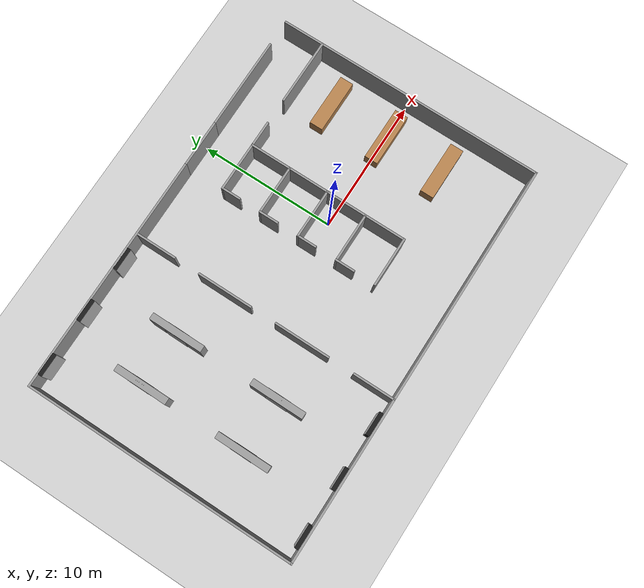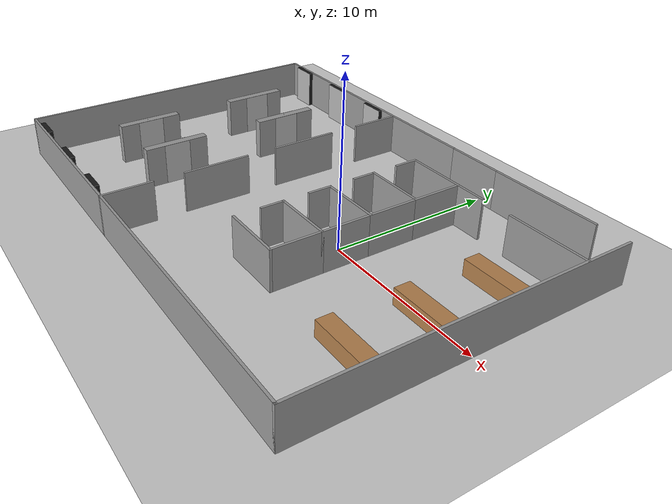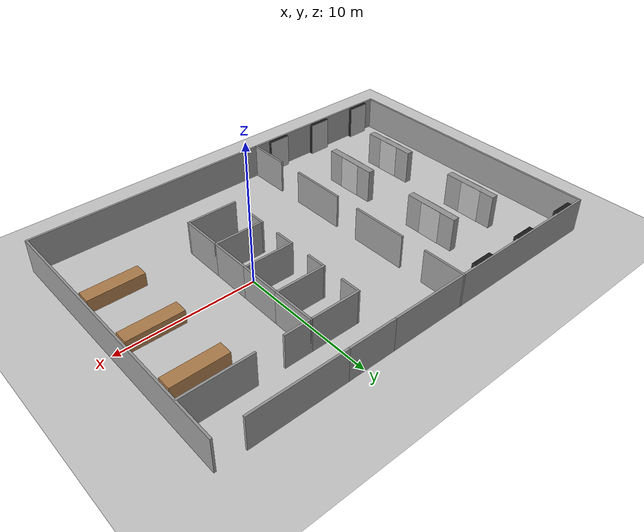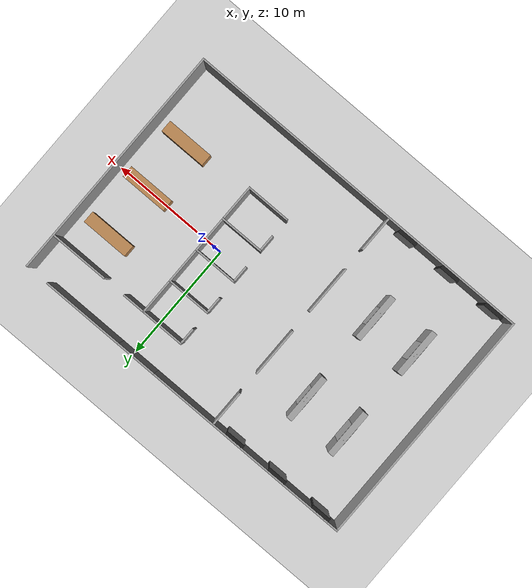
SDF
<sdf version="1.7">
 <world name="default">
  <light name="sun" type="directional">
   <pose>0 0 10 0 -0 0</pose>
   <diffuse>0.8 0.8 0.8 1</diffuse>
   <specular>0.2 0.2 0.2 1</specular>
   <attenuation>
    <range>1000</range>
    <constant>0.9</constant>
    <linear>0.01</linear>
    <quadratic>0.001</quadratic>
   </attenuation>
   <direction>-0.5 0.1 -0.9</direction>
   <spot><inner_angle>0</inner_angle><outer_angle>0</outer_angle><falloff>0</falloff></spot>
  </light>
  <model name="ground_plane">
   <static>1</static>
   <link name="link">
    <collision name="collision">
     <geometry><plane><normal>0 0 1</normal><size>100 100</size></plane></geometry>
     <surface>
      <contact><collide_bitmask>65535</collide_bitmask></contact>
      <friction><ode><mu>100</mu><mu2>50</mu2></ode></friction>
     </surface>
    </collision>
    <visual name="visual">
     <cast_shadows>0</cast_shadows>
     <geometry><plane><normal>0 0 1</normal><size>100 100</size></plane></geometry>
     <material>
      <script><uri>file://media/materials/scripts/gazebo.material</uri><name>Gazebo/Grey</name></script>
     </material>
    </visual>
   </link>
  </model>
  <gravity>0 0 -9.8</gravity>
  <magnetic_field>6e-06 2.3e-05 -4.2e-05</magnetic_field>
  <atmosphere type="adiabatic"/>
  <physics type="ode">
   <max_step_size>0.001</max_step_size>
   <real_time_factor>1</real_time_factor>
   <real_time_update_rate>1000</real_time_update_rate>
  </physics>
  <scene><ambient>0.4 0.4 0.4 1</ambient><background>0.7 0.7 0.7 1</background><shadows>1</shadows></scene>
  <spherical_coordinates>
   <surface_model>EARTH_WGS84</surface_model>
   <latitude_deg>0</latitude_deg>
   <longitude_deg>0</longitude_deg>
   <elevation>0</elevation>
   <heading_deg>0</heading_deg>
  </spherical_coordinates>
  <model name="warehouse">
   <pose>-5 -0 0 0 -0 0</pose>
   <link name="Wall_0">
    <collision name="Wall_0_Collision">
     <geometry><box><size>20.15 0.15 2.5</size></box></geometry>
     <pose>0 0 1.25 0 -0 0</pose>
    </collision>
    <visual name="Wall_0_Visual">
     <pose>0 0 1.25 0 -0 0</pose>
     <geometry><box><size>20.15 0.15 2.5</size></box></geometry>
     <material>
      <script><uri>file://media/materials/scripts/gazebo.material</uri><name>Gazebo/Grey</name></script>
      <ambient>1 1 1 1</ambient>
     </material>
     <meta><layer>0</layer></meta>
    </visual>
    <pose>15 0 0 0 -0 1.5708</pose>
   </link>
   <link name="Wall_11">
    <collision name="Wall_11_Collision">
     <geometry><box><size>1.5 0.15 2.5</size></box></geometry>
     <pose>0 0 1.25 0 -0 0</pose>
    </collision>
    <visual name="Wall_11_Visual">
     <pose>0 0 1.25 0 -0 0</pose>
     <geometry><box><size>1.5 0.15 2.5</size></box></geometry>
     <material>
      <script><uri>file://media/materials/scripts/gazebo.material</uri><name>Gazebo/Grey</name></script>
      <ambient>1 1 1 1</ambient>
     </material>
     <meta><layer>0</layer></meta>
    </visual>
    <pose>2.681 0.323659 0 0 -0 -1.5708</pose>
   </link>
   <link name="Wall_13">
    <collision name="Wall_13_Collision">
     <geometry><box><size>3.75 0.15 2.5</size></box></geometry>
     <pose>0 0 1.25 0 -0 0</pose>
    </collision>
    <visual name="Wall_13_Visual">
     <pose>0 0 1.25 0 -0 0</pose>
     <geometry><box><size>3.75 0.15 2.5</size></box></geometry>
     <material>
      <script><uri>file://media/materials/scripts/gazebo.material</uri><name>Gazebo/Grey</name></script>
      <ambient>1 1 1 1</ambient>
     </material>
     <meta><layer>0</layer></meta>
    </visual>
    <pose>4.481 -2 0 0 -0 0</pose>
   </link>
   <link name="Wall_15">
    <collision name="Wall_15_Collision">
     <geometry><box><size>3.15 0.15 2.5</size></box></geometry>
     <pose>0 0 1.25 0 -0 0</pose>
    </collision>
    <visual name="Wall_15_Visual">
     <pose>0 0 1.25 0 -0 0</pose>
     <geometry><box><size>3.15 0.15 2.5</size></box></geometry>
     <material>
      <script><uri>file://media/materials/scripts/gazebo.material</uri><name>Gazebo/Grey</name></script>
      <ambient>1 1 1 1</ambient>
     </material>
     <meta><layer>0</layer></meta>
    </visual>
    <pose>6.281 -0.5 0 0 -0 1.5708</pose>
   </link>
   <link name="Wall_16">
    <collision name="Wall_16_Collision">
     <geometry><box><size>3.75 0.15 2.5</size></box></geometry>
     <pose>0 0 1.25 0 -0 0</pose>
    </collision>
    <visual name="Wall_16_Visual">
     <pose>0 0 1.25 0 -0 0</pose>
     <geometry><box><size>3.75 0.15 2.5</size></box></geometry>
     <material>
      <script><uri>file://media/materials/scripts/gazebo.material</uri><name>Gazebo/Grey</name></script>
      <ambient>1 1 1 1</ambient>
     </material>
     <meta><layer>0</layer></meta>
    </visual>
    <pose>4.481 1 0 0 -0 3.14159</pose>
   </link>
   <link name="Wall_19">
    <collision name="Wall_19_Collision">
     <geometry><box><size>3.15 0.15 2.5</size></box></geometry>
     <pose>0 0 1.25 0 -0 0</pose>
    </collision>
    <visual name="Wall_19_Visual">
     <pose>0 0 1.25 0 -0 0</pose>
     <geometry><box><size>3.15 0.15 2.5</size></box></geometry>
     <material>
      <script><uri>file://media/materials/scripts/gazebo.material</uri><name>Gazebo/Grey</name></script>
      <ambient>1 1 1 1</ambient>
     </material>
     <meta><layer>0</layer></meta>
    </visual>
    <pose>6.281 2.5 0 0 -0 1.5708</pose>
   </link>
   <link name="Wall_2">
    <collision name="Wall_2_Collision">
     <geometry><box><size>17.831 0.15 2.5</size></box></geometry>
     <pose>0 0 1.25 0 -0 0</pose>
    </collision>
    <visual name="Wall_2_Visual">
     <pose>0 0 1.25 0 -0 0</pose>
     <geometry><box><size>17.831 0.15 2.5</size></box></geometry>
     <material>
      <script><uri>file://media/materials/scripts/gazebo.material</uri><name>Gazebo/Grey</name></script>
      <ambient>1 1 1 1</ambient>
     </material>
     <meta><layer>0</layer></meta>
    </visual>
    <pose>-6.1595 10 0 0 -0 3.14159</pose>
   </link>
   <link name="Wall_20">
    <collision name="Wall_20_Collision">
     <geometry><box><size>3.75 0.15 2.5</size></box></geometry>
     <pose>0 0 1.25 0 -0 0</pose>
    </collision>
    <visual name="Wall_20_Visual">
     <pose>0 0 1.25 0 -0 0</pose>
     <geometry><box><size>3.75 0.15 2.5</size></box></geometry>
     <material>
      <script><uri>file://media/materials/scripts/gazebo.material</uri><name>Gazebo/Grey</name></script>
      <ambient>1 1 1 1</ambient>
     </material>
     <meta><layer>0</layer></meta>
    </visual>
    <pose>4.481 4 0 0 -0 3.14159</pose>
   </link>
   <link name="Wall_21">
    <collision name="Wall_21_Collision">
     <geometry><box><size>1.5 0.15 2.5</size></box></geometry>
     <pose>0 0 1.25 0 -0 0</pose>
    </collision>
    <visual name="Wall_21_Visual">
     <pose>0 0 1.25 0 -0 0</pose>
     <geometry><box><size>1.5 0.15 2.5</size></box></geometry>
     <material>
      <script><uri>file://media/materials/scripts/gazebo.material</uri><name>Gazebo/Grey</name></script>
      <ambient>1 1 1 1</ambient>
     </material>
     <meta><layer>0</layer></meta>
    </visual>
    <pose>2.681 3.32684 0 0 -0 -1.5708</pose>
   </link>
   <link name="Wall_23">
    <collision name="Wall_23_Collision">
     <geometry><box><size>3.15 0.15 2.5</size></box></geometry>
     <pose>0 0 1.25 0 -0 0</pose>
    </collision>
    <visual name="Wall_23_Visual">
     <pose>0 0 1.25 0 -0 0</pose>
     <geometry><box><size>3.15 0.15 2.5</size></box></geometry>
     <material>
      <script><uri>file://media/materials/scripts/gazebo.material</uri><name>Gazebo/Grey</name></script>
      <ambient>1 1 1 1</ambient>
     </material>
     <meta><layer>0</layer></meta>
    </visual>
    <pose>6.281 5.5 0 0 -0 1.5708</pose>
   </link>
   <link name="Wall_24">
    <collision name="Wall_24_Collision">
     <geometry><box><size>3.75 0.15 2.5</size></box></geometry>
     <pose>0 0 1.25 0 -0 0</pose>
    </collision>
    <visual name="Wall_24_Visual">
     <pose>0 0 1.25 0 -0 0</pose>
     <geometry><box><size>3.75 0.15 2.5</size></box></geometry>
     <material>
      <script><uri>file://media/materials/scripts/gazebo.material</uri><name>Gazebo/Grey</name></script>
      <ambient>1 1 1 1</ambient>
     </material>
     <meta><layer>0</layer></meta>
    </visual>
    <pose>4.481 7 0 0 -0 3.14159</pose>
   </link>
   <link name="Wall_25">
    <collision name="Wall_25_Collision">
     <geometry><box><size>1.5 0.15 2.5</size></box></geometry>
     <pose>0 0 1.25 0 -0 0</pose>
    </collision>
    <visual name="Wall_25_Visual">
     <pose>0 0 1.25 0 -0 0</pose>
     <geometry><box><size>1.5 0.15 2.5</size></box></geometry>
     <material>
      <script><uri>file://media/materials/scripts/gazebo.material</uri><name>Gazebo/Grey</name></script>
      <ambient>1 1 1 1</ambient>
     </material>
     <meta><layer>0</layer></meta>
    </visual>
    <pose>2.681 6.32684 0 0 -0 -1.5708</pose>
   </link>
   <link name="Wall_27">
    <collision name="Wall_27_Collision">
     <geometry><box><size>2 0.15 2.5</size></box></geometry>
     <pose>0 0 1.25 0 -0 0</pose>
    </collision>
    <visual name="Wall_27_Visual">
     <pose>0 0 1.25 0 -0 0</pose>
     <geometry><box><size>2 0.15 2.5</size></box></geometry>
     <material>
      <script><uri>file://media/materials/scripts/gazebo.material</uri><name>Gazebo/Grey</name></script>
      <ambient>1 1 1 1</ambient>
     </material>
     <meta><layer>0</layer></meta>
    </visual>
    <pose>7.206 7 0 0 -0 0</pose>
   </link>
   <link name="Wall_29">
    <collision name="Wall_29_Collision">
     <geometry><box><size>5 0.15 2.5</size></box></geometry>
     <pose>0 0 1.25 0 -0 0</pose>
    </collision>
    <visual name="Wall_29_Visual">
     <pose>0 0 1.25 0 -0 0</pose>
     <geometry><box><size>5 0.15 2.5</size></box></geometry>
     <material>
      <script><uri>file://media/materials/scripts/gazebo.material</uri><name>Gazebo/Grey</name></script>
      <ambient>1 1 1 1</ambient>
     </material>
     <meta><layer>0</layer></meta>
    </visual>
    <pose>12.565 7 0 0 -0 0</pose>
   </link>
   <link name="Wall_3">
    <collision name="Wall_3_Collision">
     <geometry><box><size>20.15 0.15 2.5</size></box></geometry>
     <pose>0 0 1.25 0 -0 0</pose>
    </collision>
    <visual name="Wall_3_Visual">
     <pose>0 0 1.25 0 -0 0</pose>
     <geometry><box><size>20.15 0.15 2.5</size></box></geometry>
     <material>
      <script><uri>file://media/materials/scripts/gazebo.material</uri><name>Gazebo/Grey</name></script>
      <ambient>1 1 1 1</ambient>
     </material>
     <meta><layer>0</layer></meta>
    </visual>
    <pose>-15 0 0 0 -0 -1.5708</pose>
   </link>
   <link name="Wall_31">
    <collision name="Wall_31_Collision">
     <geometry><box><size>3.15 0.15 2.5</size></box></geometry>
     <pose>0 0 1.25 0 -0 0</pose>
    </collision>
    <visual name="Wall_31_Visual">
     <pose>0 0 1.25 0 -0 0</pose>
     <geometry><box><size>3.15 0.15 2.5</size></box></geometry>
     <material>
      <script><uri>file://media/materials/scripts/gazebo.material</uri><name>Gazebo/Grey</name></script>
      <ambient>1 1 1 1</ambient>
     </material>
     <meta><layer>0</layer></meta>
    </visual>
    <pose>6.281 -3.5 0 0 -0 -1.5708</pose>
   </link>
   <link name="Wall_32">
    <collision name="Wall_32_Collision">
     <geometry><box><size>3.75 0.15 2.5</size></box></geometry>
     <pose>0 0 1.25 0 -0 0</pose>
    </collision>
    <visual name="Wall_32_Visual">
     <pose>0 0 1.25 0 -0 0</pose>
     <geometry><box><size>3.75 0.15 2.5</size></box></geometry>
     <material>
      <script><uri>file://media/materials/scripts/gazebo.material</uri><name>Gazebo/Grey</name></script>
      <ambient>1 1 1 1</ambient>
     </material>
     <meta><layer>0</layer></meta>
    </visual>
    <pose>4.481 -5 0 0 -0 3.14159</pose>
   </link>
   <link name="Wall_34">
    <collision name="Wall_34_Collision">
     <geometry><box><size>1.5 0.15 2.5</size></box></geometry>
     <pose>0 0 1.25 0 -0 0</pose>
    </collision>
    <visual name="Wall_34_Visual">
     <pose>0 0 1.25 0 -0 0</pose>
     <geometry><box><size>1.5 0.15 2.5</size></box></geometry>
     <material>
      <script><uri>file://media/materials/scripts/gazebo.material</uri><name>Gazebo/Grey</name></script>
      <ambient>1 1 1 1</ambient>
     </material>
     <meta><layer>0</layer></meta>
    </visual>
    <pose>2.681 -2.67316 0 0 0 -1.5708</pose>
   </link>
   <link name="Wall_36">
    <collision name="Wall_36_Collision">
     <geometry><box><size>4.15 0.15 2.5</size></box></geometry>
     <pose>0 0 1.25 0 -0 0</pose>
    </collision>
    <visual name="Wall_36_Visual">
     <pose>0 0 1.25 0 -0 0</pose>
     <geometry><box><size>4.15 0.15 2.5</size></box></geometry>
     <material>
      <script><uri>file://media/materials/scripts/gazebo.material</uri><name>Gazebo/Grey</name></script>
      <ambient>1 1 1 1</ambient>
     </material>
     <meta><layer>0</layer></meta>
    </visual>
    <pose>-3 3 0 0 -0 1.5708</pose>
   </link>
   <link name="Wall_39">
    <collision name="Wall_39_Collision">
     <geometry><box><size>6.869 0.15 2.5</size></box></geometry>
     <pose>0 0 1.25 0 -0 0</pose>
    </collision>
    <visual name="Wall_39_Visual">
     <pose>0 0 1.25 0 -0 0</pose>
     <geometry><box><size>6.869 0.15 2.5</size></box></geometry>
     <material>
      <script><uri>file://media/materials/scripts/gazebo.material</uri><name>Gazebo/Grey</name></script>
      <ambient>1 1 1 1</ambient>
     </material>
     <meta><layer>0</layer></meta>
    </visual>
    <pose>9.6405 10 0 0 -0 0</pose>
   </link>
   <link name="Wall_4">
    <collision name="Wall_4_Collision">
     <geometry><box><size>30.15 0.15 2.5</size></box></geometry>
     <pose>0 0 1.25 0 -0 0</pose>
    </collision>
    <visual name="Wall_4_Visual">
     <pose>0 0 1.25 0 -0 0</pose>
     <geometry><box><size>30.15 0.15 2.5</size></box></geometry>
     <material>
      <script><uri>file://media/materials/scripts/gazebo.material</uri><name>Gazebo/Grey</name></script>
      <ambient>1 1 1 1</ambient>
     </material>
     <meta><layer>0</layer></meta>
    </visual>
    <pose>0 -10 0 0 -0 0</pose>
   </link>
   <link name="Wall_41">
    <collision name="Wall_41_Collision">
     <geometry><box><size>4.15 0.15 2.5</size></box></geometry>
     <pose>0 0 1.25 0 -0 0</pose>
    </collision>
    <visual name="Wall_41_Visual">
     <pose>0 0 1.25 0 -0 0</pose>
     <geometry><box><size>4.15 0.15 2.5</size></box></geometry>
     <material>
      <script><uri>file://media/materials/scripts/gazebo.material</uri><name>Gazebo/Grey</name></script>
      <ambient>1 1 1 1</ambient>
     </material>
     <meta><layer>0</layer></meta>
    </visual>
    <pose>-3 -3 0 0 -0 1.5708</pose>
   </link>
   <link name="Wall_43">
    <collision name="Wall_43_Collision">
     <geometry><box><size>3.15 0.15 2.5</size></box></geometry>
     <pose>0 0 1.25 0 -0 0</pose>
    </collision>
    <visual name="Wall_43_Visual">
     <pose>0 0 1.25 0 -0 0</pose>
     <geometry><box><size>3.15 0.15 2.5</size></box></geometry>
     <material>
      <script><uri>file://media/materials/scripts/gazebo.material</uri><name>Gazebo/Grey</name></script>
      <ambient>1 1 1 1</ambient>
     </material>
     <meta><layer>0</layer></meta>
    </visual>
    <pose>-3 -8.5 0 0 -0 -1.5708</pose>
   </link>
   <link name="Wall_45">
    <collision name="Wall_45_Collision">
     <geometry><box><size>3.15 0.15 2.5</size></box></geometry>
     <pose>0 0 1.25 0 -0 0</pose>
    </collision>
    <visual name="Wall_45_Visual">
     <pose>0 0 1.25 0 -0 0</pose>
     <geometry><box><size>3.15 0.15 2.5</size></box></geometry>
     <material>
      <script><uri>file://media/materials/scripts/gazebo.material</uri><name>Gazebo/Grey</name></script>
      <ambient>1 1 1 1</ambient>
     </material>
     <meta><layer>0</layer></meta>
    </visual>
    <pose>-3 8.5 0 0 -0 -1.5708</pose>
   </link>
   <static>1</static>
  </model>
  <model name="table_0">
   <pose>5 0 0 0 -0 0</pose>
   <link name="Wall_49">
    <collision name="Wall_49_Collision">
     <geometry><box><size>4 1 1</size></box></geometry>
     <pose>0 0 0.5 0 -0 0</pose>
    </collision>
    <visual name="Wall_49_Visual">
     <pose>0 0 0.5 0 -0 0</pose>
     <geometry><box><size>4 1 1</size></box></geometry>
     <material>
      <script><uri>file://media/materials/scripts/gazebo.material</uri><name>Gazebo/Wood</name></script>
      <ambient>1 1 1 1</ambient>
     </material>
     <meta><layer>0</layer></meta>
    </visual>
    <pose>2.25 -0.0775 0 0 -0 0</pose>
   </link>
   <static>1</static>
  </model>
  <model name="table_0_clone">
   <pose>5 4.5 0 0 -0 0</pose>
   <link name="Wall_49">
    <collision name="Wall_49_Collision">
     <geometry><box><size>4 1 1</size></box></geometry>
     <pose>0 0 0.5 0 -0 0</pose>
    </collision>
    <visual name="Wall_49_Visual">
     <pose>0 0 0.5 0 -0 0</pose>
     <geometry><box><size>4 1 1</size></box></geometry>
     <material>
      <script><uri>file://media/materials/scripts/gazebo.material</uri><name>Gazebo/Wood</name></script>
      <ambient>1 1 1 1</ambient>
     </material>
     <meta><layer>0</layer></meta>
    </visual>
    <pose>2.25 -0.0775 0 0 -0 0</pose>
   </link>
   <static>1</static>
  </model>
  <model name="table_0_clone_0">
   <pose>5 -4.5 0 0 -0 0</pose>
   <link name="Wall_49">
    <collision name="Wall_49_Collision">
     <geometry><box><size>4 1 1</size></box></geometry>
     <pose>0 0 0.5 0 -0 0</pose>
    </collision>
    <visual name="Wall_49_Visual">
     <pose>0 0 0.5 0 -0 0</pose>
     <geometry><box><size>4 1 1</size></box></geometry>
     <material>
      <script><uri>file://media/materials/scripts/gazebo.material</uri><name>Gazebo/Wood</name></script>
      <ambient>1 1 1 1</ambient>
     </material>
     <meta><layer>0</layer></meta>
    </visual>
    <pose>2.25 -0.0775 0 0 -0 0</pose>
   </link>
   <static>1</static>
  </model>
  <plugin name="ActorPosesPlugin" filename="libActorPosesPlugin.so"/>
  <model name="wall_delivery_point">
   <pose>-0.525 5.0375 0 0 -0 0</pose>
   <link name="Wall_0">
    <collision name="Wall_0_Collision">
     <geometry><box><size>3.5 0.15 2.5</size></box></geometry>
     <pose>0 0 1.25 0 -0 0</pose>
    </collision>
    <visual name="Wall_0_Visual">
     <pose>0 0 1.25 0 -0 0</pose>
     <geometry><box><size>3.5 0.15 2.5</size></box></geometry>
     <material>
      <script><uri>file://media/materials/scripts/gazebo.material</uri><name>Gazebo/Grey</name></script>
      <ambient>1 1 1 1</ambient>
     </material>
     <meta><layer>0</layer></meta>
    </visual>
    <pose>0 4.9625 0 0 -0 0</pose>
   </link>
   <static>1</static>
  </model>
  <model name="shelves">
   <pose>-8.125 0.15 0 0 -0 0</pose>
   <link name="Wall_0">
    <collision name="Wall_0_Collision">
     <geometry><box><size>4 0.5 2.5</size></box></geometry>
     <pose>0 0 1.25 0 -0 0</pose>
    </collision>
    <visual name="Wall_0_Visual">
     <pose>0 0 1.25 0 -0 0</pose>
     <geometry><box><size>4 0.5 2.5</size></box></geometry>
     <material>
      <script><uri>file://media/materials/scripts/gazebo.material</uri><name>Gazebo/Grey</name></script>
      <ambient>1 1 1 1</ambient>
     </material>
     <meta><layer>0</layer></meta>
    </visual>
    <pose>-3.875 3.9 0 0 -0 -1.5708</pose>
   </link>
   <link name="Wall_2">
    <collision name="Wall_2_Collision">
     <geometry><box><size>4 0.5 2.5</size></box></geometry>
     <pose>0 0 1.25 0 -0 0</pose>
    </collision>
    <visual name="Wall_2_Visual">
     <pose>0 0 1.25 0 -0 0</pose>
     <geometry><box><size>4 0.5 2.5</size></box></geometry>
     <material>
      <script><uri>file://media/materials/scripts/gazebo.material</uri><name>Gazebo/Grey</name></script>
      <ambient>1 1 1 1</ambient>
     </material>
     <meta><layer>0</layer></meta>
    </visual>
    <pose>-7.875 3.9 0 0 -0 -1.5708</pose>
   </link>
   <link name="Wall_4">
    <collision name="Wall_4_Collision">
     <geometry><box><size>4 0.5 2.5</size></box></geometry>
     <pose>0 0 1.25 0 -0 0</pose>
    </collision>
    <visual name="Wall_4_Visual">
     <pose>0 0 1.25 0 -0 0</pose>
     <geometry><box><size>4 0.5 2.5</size></box></geometry>
     <material>
      <script><uri>file://media/materials/scripts/gazebo.material</uri><name>Gazebo/Grey</name></script>
      <ambient>1 1 1 1</ambient>
     </material>
     <meta><layer>0</layer></meta>
    </visual>
    <pose>-3.875 -3.9 0 0 -0 -1.5708</pose>
   </link>
   <link name="Wall_6">
    <collision name="Wall_6_Collision">
     <geometry><box><size>4 0.5 2.5</size></box></geometry>
     <pose>0 0 1.25 0 -0 0</pose>
    </collision>
    <visual name="Wall_6_Visual">
     <pose>0 0 1.25 0 -0 0</pose>
     <geometry><box><size>4 0.5 2.5</size></box></geometry>
     <material>
      <script><uri>file://media/materials/scripts/gazebo.material</uri><name>Gazebo/Grey</name></script>
      <ambient>1 1 1 1</ambient>
     </material>
     <meta><layer>0</layer></meta>
    </visual>
    <pose>-7.875 -3.9 0 0 -0 -1.5708</pose>
   </link>
   <static>1</static>
  </model>
  <model name="delivery_point_0">
   <pose>-5.19681 -5.29 0 0 -0 0</pose>
   <link name="Wall_0">
    <collision name="Wall_0_Collision">
     <geometry><box><size>1.65 0.3 2.5</size></box></geometry>
     <pose>0 0 1.25 0 -0 0</pose>
    </collision>
    <visual name="Wall_0_Visual">
     <pose>0 0 1.25 0 -0 0</pose>
     <geometry><box><size>1.65 0.3 2.5</size></box></geometry>
     <material><ambient>0.1 0.1 0.1 1</ambient></material>
     <meta><layer>0</layer></meta>
    </visual>
    <visual name="Poster_Face_Visual">
     <pose>0 0.151 1.25 0 -0 0</pose>
     <geometry><box><size>1.65 0.001 2.5</size></box></geometry>
     <material>
      <script>
       <uri>model://poster/materials/scripts/poster.material</uri>
       <uri>model://poster/materials/textures/poster.png</uri>
       <name>Poster/Image</name>
      </script>
     </material>
    </visual>
    <visual name="Poster_Back_Visual">
     <pose>0 -0.151 1.25 0 -0 3.14159</pose>
     <geometry><box><size>1.65 0.001 2.5</size></box></geometry>
     <material>
      <script>
       <uri>model://poster/materials/scripts/poster.material</uri>
       <uri>model://poster/materials/textures/poster.png</uri>
       <name>Poster/Image</name>
      </script>
     </material>
    </visual>
    <pose>-4.7604 -4.48691 0 0 -0 0</pose>
   </link>
   <static>1</static>
  </model>
  <model name="delivery_point_0_clone">
   <pose>-9.2862 -5.29 0 0 -0 0</pose>
   <link name="Wall_0">
    <collision name="Wall_0_Collision">
     <geometry><box><size>1.65 0.3 2.5</size></box></geometry>
     <pose>0 0 1.25 0 -0 0</pose>
    </collision>
    <visual name="Wall_0_Visual">
     <pose>0 0 1.25 0 -0 0</pose>
     <geometry><box><size>1.65 0.3 2.5</size></box></geometry>
     <material><ambient>0.1 0.1 0.1 1</ambient></material>
     <meta><layer>0</layer></meta>
    </visual>
    <visual name="Poster_Face_Visual">
     <pose>0 0.151 1.25 0 -0 0</pose>
     <geometry><box><size>1.65 0.001 2.5</size></box></geometry>
     <material>
      <script>
       <uri>model://poster/materials/scripts/poster.material</uri>
       <uri>model://poster/materials/textures/poster.png</uri>
       <name>Poster/Image</name>
      </script>
     </material>
    </visual>
    <visual name="Poster_Back_Visual">
     <pose>0 -0.151 1.25 0 -0 3.14159</pose>
     <geometry><box><size>1.65 0.001 2.5</size></box></geometry>
     <material>
      <script>
       <uri>model://poster/materials/scripts/poster.material</uri>
       <uri>model://poster/materials/textures/poster.png</uri>
       <name>Poster/Image</name>
      </script>
     </material>
    </visual>
    <pose>-4.7604 -4.48691 0 0 -0 0</pose>
   </link>
   <static>1</static>
  </model>
  <model name="delivery_point_0_clone_clone">
   <pose>-13.5084 -5.29 0 0 -0 0</pose>
   <link name="Wall_0">
    <collision name="Wall_0_Collision">
     <geometry><box><size>1.65 0.3 2.5</size></box></geometry>
     <pose>0 0 1.25 0 -0 0</pose>
    </collision>
    <visual name="Wall_0_Visual">
     <pose>0 0 1.25 0 -0 0</pose>
     <geometry><box><size>1.65 0.3 2.5</size></box></geometry>
     <material><ambient>0.1 0.1 0.1 1</ambient></material>
     <meta><layer>0</layer></meta>
    </visual>
    <visual name="Poster_Face_Visual">
     <pose>0 0.151 1.25 0 -0 0</pose>
     <geometry><box><size>1.65 0.001 2.5</size></box></geometry>
     <material>
      <script>
       <uri>model://poster/materials/scripts/poster.material</uri>
       <uri>model://poster/materials/textures/poster.png</uri>
       <name>Poster/Image</name>
      </script>
     </material>
    </visual>
    <visual name="Poster_Back_Visual">
     <pose>0 -0.151 1.25 0 -0 3.14159</pose>
     <geometry><box><size>1.65 0.001 2.5</size></box></geometry>
     <material>
      <script>
       <uri>model://poster/materials/scripts/poster.material</uri>
       <uri>model://poster/materials/textures/poster.png</uri>
       <name>Poster/Image</name>
      </script>
     </material>
    </visual>
    <pose>-4.7604 -4.48691 0 0 -0 0</pose>
   </link>
   <static>1</static>
  </model>
  <model name="delivery_point_0_clone_0">
   <pose>-9.2862 14.3 0 0 -0 0</pose>
   <link name="Wall_0">
    <collision name="Wall_0_Collision">
     <geometry><box><size>1.65 0.3 2.5</size></box></geometry>
     <pose>0 0 1.25 0 -0 0</pose>
    </collision>
    <visual name="Wall_0_Visual">
     <pose>0 0 1.25 0 -0 0</pose>
     <geometry><box><size>1.65 0.3 2.5</size></box></geometry>
     <material><ambient>0.1 0.1 0.1 1</ambient></material>
     <meta><layer>0</layer></meta>
    </visual>
    <visual name="Poster_Face_Visual">
     <pose>0 0.151 1.25 0 -0 0</pose>
     <geometry><box><size>1.65 0.001 2.5</size></box></geometry>
     <material>
      <script>
       <uri>model://poster/materials/scripts/poster.material</uri>
       <uri>model://poster/materials/textures/poster.png</uri>
       <name>Poster/Image</name>
      </script>
     </material>
    </visual>
    <visual name="Poster_Back_Visual">
     <pose>0 -0.151 1.25 0 -0 3.14159</pose>
     <geometry><box><size>1.65 0.001 2.5</size></box></geometry>
     <material>
      <script>
       <uri>model://poster/materials/scripts/poster.material</uri>
       <uri>model://poster/materials/textures/poster.png</uri>
       <name>Poster/Image</name>
      </script>
     </material>
    </visual>
    <pose>-4.7604 -4.48691 0 0 -0 0</pose>
   </link>
   <static>1</static>
  </model>
  <model name="delivery_point_0_clone_0_clone">
   <pose>-13.5084 14.3 0 0 -0 0</pose>
   <link name="Wall_0">
    <collision name="Wall_0_Collision">
     <geometry><box><size>1.65 0.3 2.5</size></box></geometry>
     <pose>0 0 1.25 0 -0 0</pose>
    </collision>
    <visual name="Wall_0_Visual">
     <pose>0 0 1.25 0 -0 0</pose>
     <geometry><box><size>1.65 0.3 2.5</size></box></geometry>
     <material><ambient>0.1 0.1 0.1 1</ambient></material>
     <meta><layer>0</layer></meta>
    </visual>
    <visual name="Poster_Face_Visual">
     <pose>0 0.151 1.25 0 -0 0</pose>
     <geometry><box><size>1.65 0.001 2.5</size></box></geometry>
     <material>
      <script>
       <uri>model://poster/materials/scripts/poster.material</uri>
       <uri>model://poster/materials/textures/poster.png</uri>
       <name>Poster/Image</name>
      </script>
     </material>
    </visual>
    <visual name="Poster_Back_Visual">
     <pose>0 -0.151 1.25 0 -0 3.14159</pose>
     <geometry><box><size>1.65 0.001 2.5</size></box></geometry>
     <material>
      <script>
       <uri>model://poster/materials/scripts/poster.material</uri>
       <uri>model://poster/materials/textures/poster.png</uri>
       <name>Poster/Image</name>
      </script>
     </material>
    </visual>
    <pose>-4.7604 -4.48691 0 0 -0 0</pose>
   </link>
   <static>1</static>
  </model>
  <model name="delivery_point_0_clone_0_clone_0">
   <pose>-5.19681 14.3 0 0 -0 0</pose>
   <link name="Wall_0">
    <collision name="Wall_0_Collision">
     <geometry><box><size>1.65 0.3 2.5</size></box></geometry>
     <pose>0 0 1.25 0 -0 0</pose>
    </collision>
    <visual name="Wall_0_Visual">
     <pose>0 0 1.25 0 -0 0</pose>
     <geometry><box><size>1.65 0.3 2.5</size></box></geometry>
     <material><ambient>0.1 0.1 0.1 1</ambient></material>
     <meta><layer>0</layer></meta>
    </visual>
    <visual name="Poster_Face_Visual">
     <pose>0 0.151 1.25 0 -0 0</pose>
     <geometry><box><size>1.65 0.001 2.5</size></box></geometry>
     <material>
      <script>
       <uri>model://poster/materials/scripts/poster.material</uri>
       <uri>model://poster/materials/textures/poster.png</uri>
       <name>Poster/Image</name>
      </script>
     </material>
    </visual>
    <visual name="Poster_Back_Visual">
     <pose>0 -0.151 1.25 0 -0 3.14159</pose>
     <geometry><box><size>1.65 0.001 2.5</size></box></geometry>
     <material>
      <script>
       <uri>model://poster/materials/scripts/poster.material</uri>
       <uri>model://poster/materials/textures/poster.png</uri>
       <name>Poster/Image</name>
      </script>
     </material>
    </visual>
    <pose>-4.7604 -4.48691 0 0 -0 0</pose>
   </link>
   <static>1</static>
  </model>
  <model name="delivery_point_0_clone_0_clone_clone">
   <pose>-16.37 1.01584 0 0 -0 1.57</pose>
   <link name="Wall_0">
    <collision name="Wall_0_Collision">
     <geometry><box><size>1.65 0.02 2.5</size></box></geometry>
     <pose>0 0 1.25 0 -0 0</pose>
    </collision>
    <visual name="Poster_Face_Visual">
     <pose>0 0.151 1.25 0 -0 0</pose>
     <geometry><box><size>1.65 0.001 2.5</size></box></geometry>
     <material>
      <script>
       <uri>model://poster/materials/scripts/poster.material</uri>
       <uri>model://poster/materials/textures/poster.png</uri>
       <name>Poster/Image</name>
      </script>
     </material>
    </visual>
    <visual name="Poster_Back_Visual">
     <pose>0 -0.151 1.25 0 -0 3.14159</pose>
     <geometry><box><size>1.65 0.001 2.5</size></box></geometry>
     <material>
      <script>
       <uri>model://poster/materials/scripts/poster.material</uri>
       <uri>model://poster/materials/textures/poster.png</uri>
       <name>Poster/Image</name>
      </script>
     </material>
    </visual>
    <pose>-4.7604 -4.48691 0 0 -0 0</pose>
   </link>
   <static>1</static>
  </model>
  <model name="delivery_point_0_clone_0_clone_clone_clone">
   <pose>-20.37 1.01584 0 0 -0 1.57</pose>
   <link name="Wall_0">
    <collision name="Wall_0_Collision">
     <geometry><box><size>1.65 0.02 2.5</size></box></geometry>
     <pose>0 0 1.25 0 -0 0</pose>
    </collision>
    <visual name="Poster_Face_Visual">
     <pose>0 0.151 1.25 0 -0 0</pose>
     <geometry><box><size>1.65 0.001 2.5</size></box></geometry>
     <material>
      <script>
       <uri>model://poster/materials/scripts/poster.material</uri>
       <uri>model://poster/materials/textures/poster.png</uri>
       <name>Poster/Image</name>
      </script>
     </material>
    </visual>
    <visual name="Poster_Back_Visual">
     <pose>0 -0.151 1.25 0 -0 3.14159</pose>
     <geometry><box><size>1.65 0.001 2.5</size></box></geometry>
     <material>
      <script>
       <uri>model://poster/materials/scripts/poster.material</uri>
       <uri>model://poster/materials/textures/poster.png</uri>
       <name>Poster/Image</name>
      </script>
     </material>
    </visual>
    <pose>-4.7604 -4.48691 0 0 -0 0</pose>
   </link>
   <static>1</static>
  </model>
  <model name="delivery_point_0_clone_0_clone_clone_clone_0">
   <pose>-16.37 8.81444 0 0 -0 1.57</pose>
   <link name="Wall_0">
    <collision name="Wall_0_Collision">
     <geometry><box><size>1.65 0.02 2.5</size></box></geometry>
     <pose>0 0 1.25 0 -0 0</pose>
    </collision>
    <visual name="Poster_Face_Visual">
     <pose>0 0.151 1.25 0 -0 0</pose>
     <geometry><box><size>1.65 0.001 2.5</size></box></geometry>
     <material>
      <script>
       <uri>model://poster/materials/scripts/poster.material</uri>
       <uri>model://poster/materials/textures/poster.png</uri>
       <name>Poster/Image</name>
      </script>
     </material>
    </visual>
    <visual name="Poster_Back_Visual">
     <pose>0 -0.151 1.25 0 -0 3.14159</pose>
     <geometry><box><size>1.65 0.001 2.5</size></box></geometry>
     <material>
      <script>
       <uri>model://poster/materials/scripts/poster.material</uri>
       <uri>model://poster/materials/textures/poster.png</uri>
       <name>Poster/Image</name>
      </script>
     </material>
    </visual>
    <pose>-4.7604 -4.48691 0 0 -0 0</pose>
   </link>
   <static>1</static>
  </model>
  <model name="delivery_point_0_clone_0_clone_clone_clone_0_clone">
   <pose>-20.37 8.91885 0 0 -0 1.57</pose>
   <link name="Wall_0">
    <collision name="Wall_0_Collision">
     <geometry><box><size>1.65 0.02 2.5</size></box></geometry>
     <pose>0 0 1.25 0 -0 0</pose>
    </collision>
    <visual name="Poster_Face_Visual">
     <pose>0 0.151 1.25 0 -0 0</pose>
     <geometry><box><size>1.65 0.001 2.5</size></box></geometry>
     <material>
      <script>
       <uri>model://poster/materials/scripts/poster.material</uri>
       <uri>model://poster/materials/textures/poster.png</uri>
       <name>Poster/Image</name>
      </script>
     </material>
    </visual>
    <visual name="Poster_Back_Visual">
     <pose>0 -0.151 1.25 0 -0 3.14159</pose>
     <geometry><box><size>1.65 0.001 2.5</size></box></geometry>
     <material>
      <script>
       <uri>model://poster/materials/scripts/poster.material</uri>
       <uri>model://poster/materials/textures/poster.png</uri>
       <name>Poster/Image</name>
      </script>
     </material>
    </visual>
    <pose>-4.7604 -4.48691 0 0 -0 0</pose>
   </link>
   <static>1</static>
  </model>
  <model name="delivery_point_0_clone_0_clone_clone_clone_0_clone_clone">
   <pose>-20.6 8.91885 0 0 -0 1.57</pose>
   <link name="Wall_0">
    <collision name="Wall_0_Collision">
     <geometry><box><size>1.65 0.02 2.5</size></box></geometry>
     <pose>0 0 1.25 0 -0 0</pose>
    </collision>
    <visual name="Poster_Face_Visual">
     <pose>0 0.151 1.25 0 -0 0</pose>
     <geometry><box><size>1.65 0.001 2.5</size></box></geometry>
     <material>
      <script>
       <uri>model://poster/materials/scripts/poster.material</uri>
       <uri>model://poster/materials/textures/poster.png</uri>
       <name>Poster/Image</name>
      </script>
     </material>
    </visual>
    <visual name="Poster_Back_Visual">
     <pose>0 -0.151 1.25 0 -0 3.14159</pose>
     <geometry><box><size>1.65 0.001 2.5</size></box></geometry>
     <material>
      <script>
       <uri>model://poster/materials/scripts/poster.material</uri>
       <uri>model://poster/materials/textures/poster.png</uri>
       <name>Poster/Image</name>
      </script>
     </material>
    </visual>
    <pose>-4.7604 -4.48691 0 0 -0 0</pose>
   </link>
   <static>1</static>
  </model>
  <model name="delivery_point_0_clone_0_clone_clone_clone_0_clone_clone_clone">
   <pose>-20.6 1.01584 0 0 -0 1.57</pose>
   <link name="Wall_0">
    <collision name="Wall_0_Collision">
     <geometry><box><size>1.65 0.02 2.5</size></box></geometry>
     <pose>0 0 1.25 0 -0 0</pose>
    </collision>
    <visual name="Poster_Face_Visual">
     <pose>0 0.151 1.25 0 -0 0</pose>
     <geometry><box><size>1.65 0.001 2.5</size></box></geometry>
     <material>
      <script>
       <uri>model://poster/materials/scripts/poster.material</uri>
       <uri>model://poster/materials/textures/poster.png</uri>
       <name>Poster/Image</name>
      </script>
     </material>
    </visual>
    <visual name="Poster_Back_Visual">
     <pose>0 -0.151 1.25 0 -0 3.14159</pose>
     <geometry><box><size>1.65 0.001 2.5</size></box></geometry>
     <material>
      <script>
       <uri>model://poster/materials/scripts/poster.material</uri>
       <uri>model://poster/materials/textures/poster.png</uri>
       <name>Poster/Image</name>
      </script>
     </material>
    </visual>
    <pose>-4.7604 -4.48691 0 0 -0 0</pose>
   </link>
   <static>1</static>
  </model>
  <model name="delivery_point_0_clone_0_clone_clone_clone_0_clone_clone_clone_clone">
   <pose>-16.6 1.01584 0 0 -0 1.57</pose>
   <link name="Wall_0">
    <collision name="Wall_0_Collision">
     <geometry><box><size>1.65 0.02 2.5</size></box></geometry>
     <pose>0 0 1.25 0 -0 0</pose>
    </collision>
    <visual name="Poster_Face_Visual">
     <pose>0 0.151 1.25 0 -0 0</pose>
     <geometry><box><size>1.65 0.001 2.5</size></box></geometry>
     <material>
      <script>
       <uri>model://poster/materials/scripts/poster.material</uri>
       <uri>model://poster/materials/textures/poster.png</uri>
       <name>Poster/Image</name>
      </script>
     </material>
    </visual>
    <visual name="Poster_Back_Visual">
     <pose>0 -0.151 1.25 0 -0 3.14159</pose>
     <geometry><box><size>1.65 0.001 2.5</size></box></geometry>
     <material>
      <script>
       <uri>model://poster/materials/scripts/poster.material</uri>
       <uri>model://poster/materials/textures/poster.png</uri>
       <name>Poster/Image</name>
      </script>
     </material>
    </visual>
    <pose>-4.7604 -4.48691 0 0 -0 0</pose>
   </link>
   <static>1</static>
  </model>
  <model name="delivery_point_0_clone_0_clone_clone_clone_0_clone_clone_clone_clone_0">
   <pose>-16.6 8.81444 0 0 -0 1.57</pose>
   <link name="Wall_0">
    <collision name="Wall_0_Collision">
     <geometry><box><size>1.65 0.02 2.5</size></box></geometry>
     <pose>0 0 1.25 0 -0 0</pose>
    </collision>
    <visual name="Poster_Face_Visual">
     <pose>0 0.151 1.25 0 -0 0</pose>
     <geometry><box><size>1.65 0.001 2.5</size></box></geometry>
     <material>
      <script>
       <uri>model://poster/materials/scripts/poster.material</uri>
       <uri>model://poster/materials/textures/poster.png</uri>
       <name>Poster/Image</name>
      </script>
     </material>
    </visual>
    <visual name="Poster_Back_Visual">
     <pose>0 -0.151 1.25 0 -0 3.14159</pose>
     <geometry><box><size>1.65 0.001 2.5</size></box></geometry>
     <material>
      <script>
       <uri>model://poster/materials/scripts/poster.material</uri>
       <uri>model://poster/materials/textures/poster.png</uri>
       <name>Poster/Image</name>
      </script>
     </material>
    </visual>
    <pose>-4.7604 -4.48691 0 0 -0 0</pose>
   </link>
   <static>1</static>
  </model>
 </world>
</sdf>
